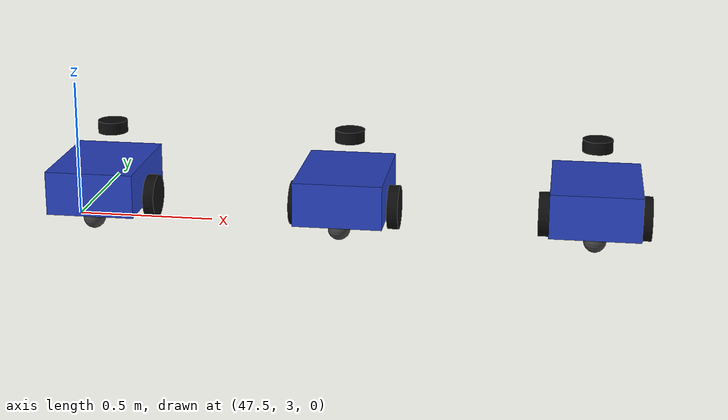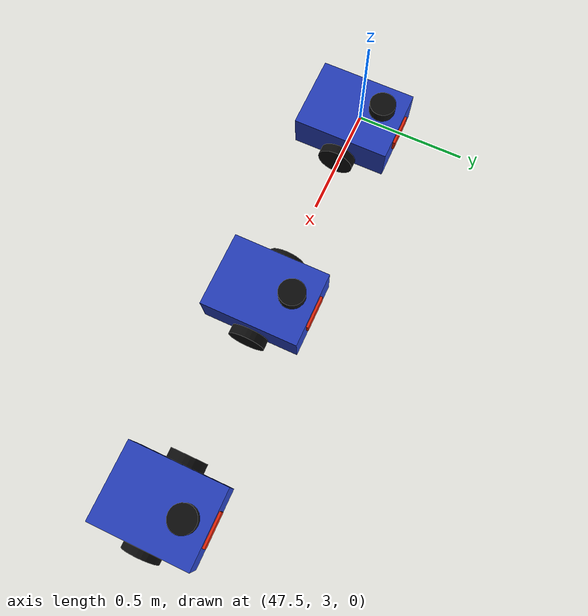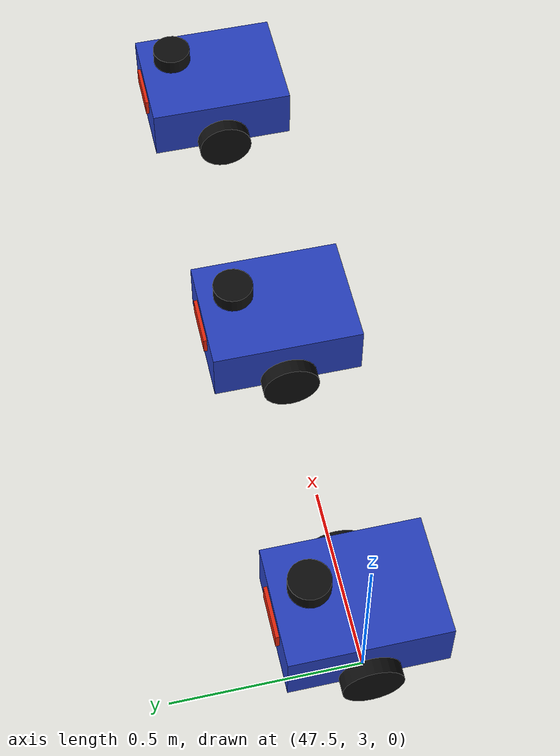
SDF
<sdf version="1.8">
 <world name="osco_scenario_world">
  <include>
   <uri>model://fire_robot_1</uri>
   <name>robot1</name>
   <pose>47.6000 3.0000 0.0 0 0 1.5708</pose>
  </include>
  <include>
   <uri>model://fire_robot_2</uri>
   <name>robot2</name>
   <pose>48.5000 3.0000 0.0 0 0 1.5708</pose>
  </include>
  <include>
   <uri>model://fire_robot_3</uri>
   <name>robot3</name>
   <pose>49.4000 3.0000 0.0 0 0 1.5708</pose>
  </include>
 </world>
</sdf>
